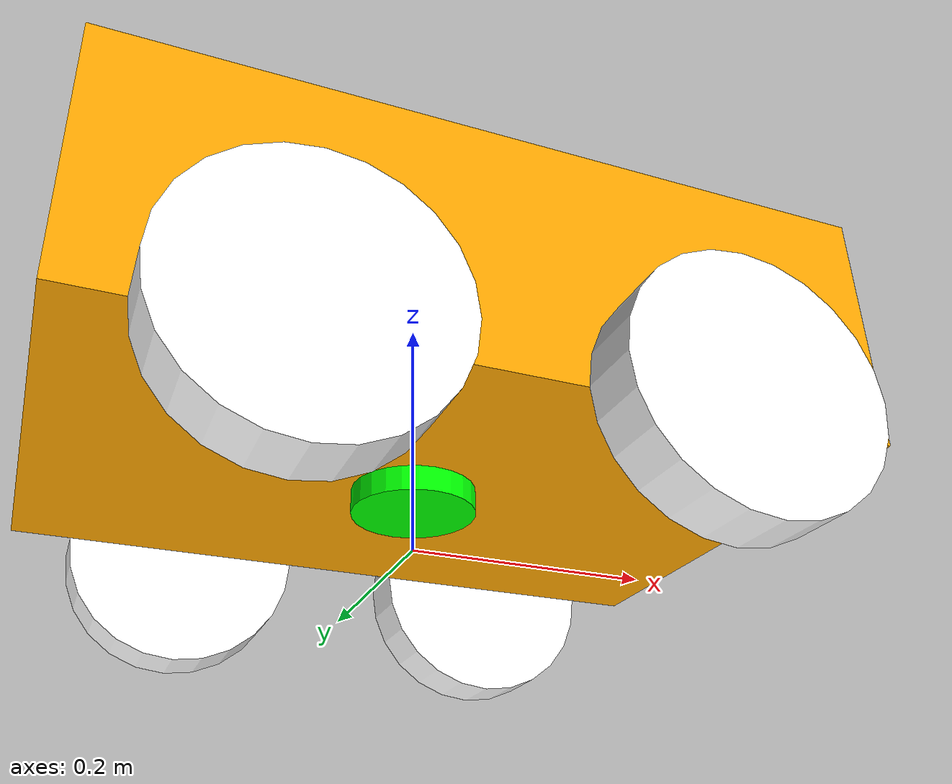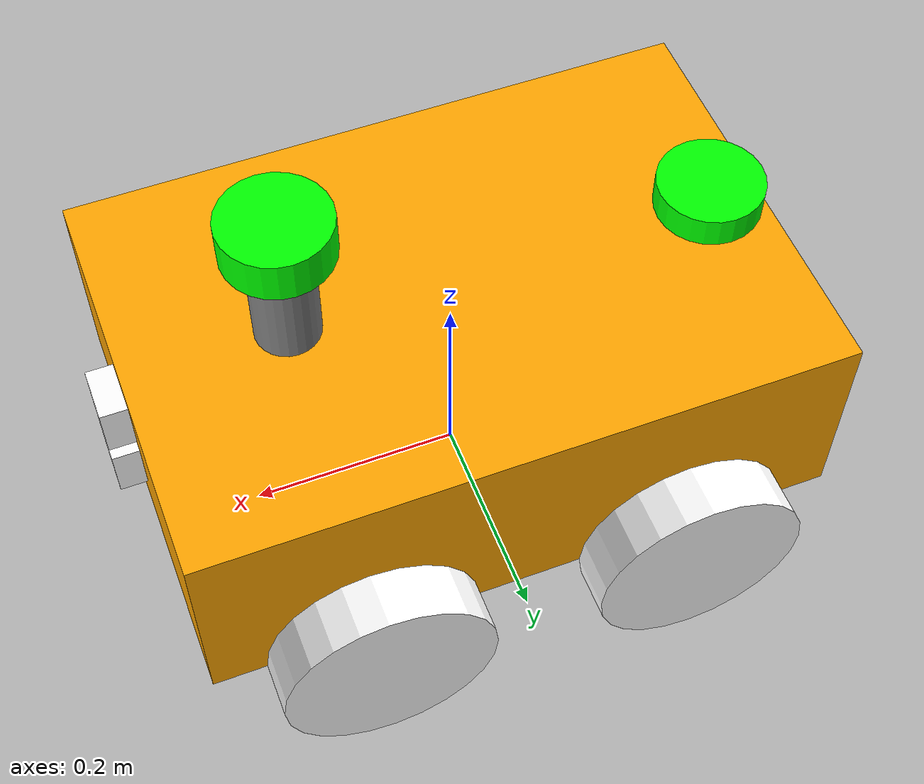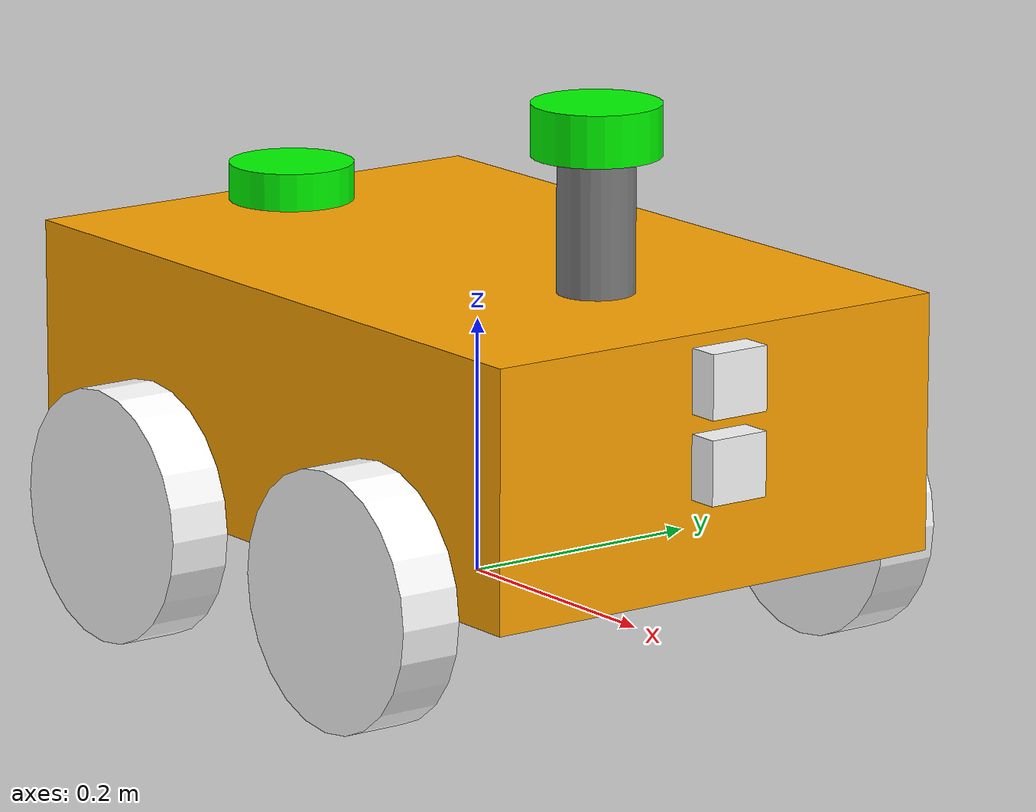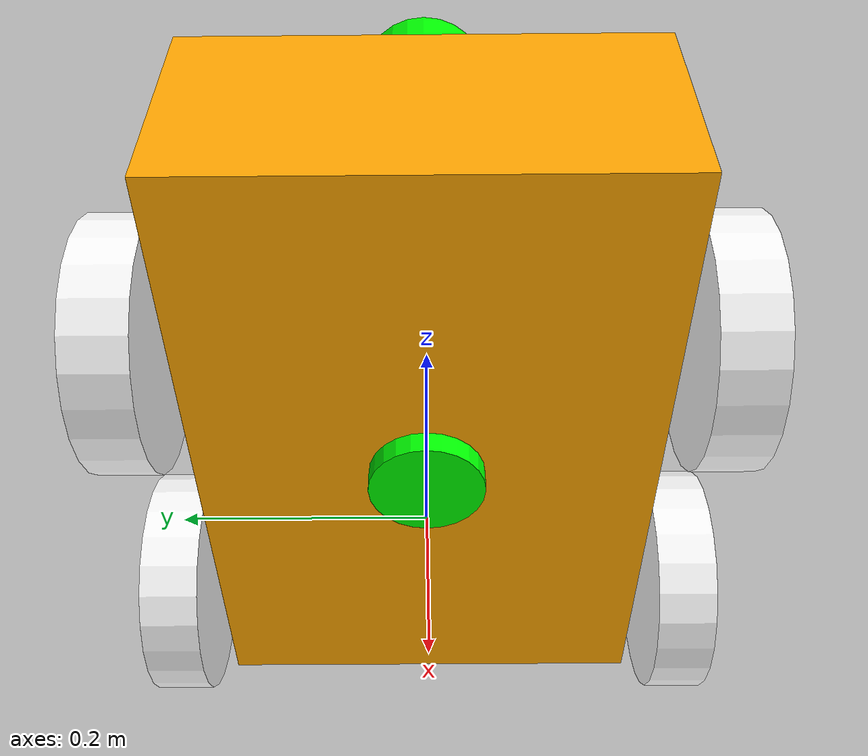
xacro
<?xml version = "1.0"?>
<robot xmlns:xacro="http://www.ros.org/wiki.xacro" name = "robot" >

<xacro:include filename="inertial.xacro"/>
<xacro:include filename="lidar.xacro"/>
<xacro:include filename="stereo.xacro"/>
<xacro:include filename="gps.xacro"/>
<xacro:include filename="imu.xacro"/>
<xacro:include filename="cam.xacro"/>

<xacro:property name="wheel_radius" value="0.1"/>
<xacro:property name="wheel_length" value="0.05"/>
<xacro:property name="wheel_mass" value="0.5"/>
<xacro:property name="damping" value="0.1"/>
<xacro:property name="friction" value="0.5"/>

    <material name = "grey">
        <color rgba = "0.7 0.7 0.7 1" />
    </material>

    <material name = "green">
        <color rgba = "0 0.6 0 1" />
    </material>

    <material name = "white">
        <color rgba = "1 1 1 1" />
    </material>

    <material name = "black">
        <color rgba = "0 0 0 1" />
    </material>

    <material name = "yellow">
        <color rgba = "0.7 0.9 0 1" />
    </material>

    <material name="orange">
    <color rgba="1 0.65 0 1" />
    </material>

    <link name="base_footprint">
        <inertial>
            <mass value="0.0"/>
            <origin xyz="0 0 0" rpy="0 0 0"/>
            <inertia ixx="0" ixy="0" ixz="0" iyy="0" iyz="0" izz="0"/>

        </inertial>
    </link>

    <joint name="base_joint" type="fixed">
        <parent link="base_footprint"/>
        <child link="base_link"/>
        <origin xyz = "0 0 0.05" rpy = "0 0 0" />

    </joint>

    <link name = "base_link">
        <visual>
            <geometry>
                <box size = "0.6 0.4 0.2" />
            </geometry>
            <origin xyz = "0 0 0.1" rpy = "0 0 0" />
            <material name = "orange" />
        </visual>

        <collision>
            <geometry>
                <box size = "0.6 0.4 0.2" />
            </geometry>
            <origin xyz = "0 0 0.1" rpy = "0 0 0" />
        </collision>

        <xacro:inertial_box mass="10" x="0.6" y="0.4" z="0.2">
            <origin xyz="0 0 0.1" rpy="0 0 0"/>
        </xacro:inertial_box>
    </link>

    <gazebo reference="base_link">
        <material>Gazebo/Orange</material>
    </gazebo>

    <link name="left_wheel_back_link">
        <visual>
            <geometry>
                <cylinder radius="0.1" length="0.05" />
            </geometry>

            <origin xyz="0 0 0" rpy="1.57 0 0"/>
            <material name = "white" />
        </visual>

        <collision>
            <geometry>
                <cylinder radius="0.1" length="0.05" />
            </geometry>

            <origin xyz="0 0 0" rpy="1.57 0 0"/>
        </collision>

        <xacro:inertial_cylinder mass="10" length="0.05" radius="0.1">
            <origin xyz="0 0 0" rpy="1.57 0 0"/>
        </xacro:inertial_cylinder>
    </link>

    <gazebo reference="left_wheel_back_link">
        <material>Gazebo/White</material>
    </gazebo>

    <joint name="base_left_wheel_back_joint" type="continuous">
        <parent link="base_link" />
        <child link="left_wheel_back_link" />
        <origin xyz="-0.15 0.225 0" rpy="0 0 0"/>
        <axis xyz="0 1 0" />
        <dynamics damping="0.1" friction="0.5"/>
    </joint>

    <link name="right_wheel_back_link">
        <visual>
            <geometry>
                <cylinder radius="0.1" length="0.05" />
            </geometry>

            <origin xyz="0 0 0" rpy="-1.57 0 0"/>
            <material name = "white" />
        </visual>

        <collision>
            <geometry>
                <cylinder radius="0.1" length="0.05" />
            </geometry>

            <origin xyz="0 0 0" rpy="-1.57 0 0"/>
        </collision>

        <xacro:inertial_cylinder mass="10" length="0.05" radius="0.1">
            <origin xyz="0 0 0" rpy="-1.57 0 0"/>
        </xacro:inertial_cylinder>
    </link>

    <gazebo reference="right_wheel_back_link">
        <material>Gazebo/White</material>
    </gazebo>

    <joint name="base_right_wheel_back_joint" type="continuous">
        <parent link="base_link" />
        <child link="right_wheel_back_link" />
        <origin xyz="-0.15 -0.225 0" rpy="0 0 0"/>
        <axis xyz="0 1 0" />
        <dynamics damping="0.1" friction="0.5"/>
    </joint>

     <link name="left_wheel_front_link">
        <visual>
            <geometry>
                <cylinder radius="0.1" length="0.05" />
            </geometry>

            <origin xyz="0 0 0" rpy="1.57 0 0"/>
            <material name = "white" />
        </visual>

        <collision>
            <geometry>
                <cylinder radius="0.1" length="0.05" />
            </geometry>

            <origin xyz="0 0 0" rpy="1.57 0 0"/>
        </collision>

        <xacro:inertial_cylinder mass="10" length="0.05" radius="0.1">
            <origin xyz="0 0 0" rpy="1.57 0 0"/>
        </xacro:inertial_cylinder>
    </link>

    <gazebo reference="left_wheel_front_link">
        <material>Gazebo/White</material>
    </gazebo>

    <joint name="base_left_wheel_front_joint" type="continuous">
        <parent link="base_link" />
        <child link="left_wheel_front_link" />
        <origin xyz="0.15 0.225 0" rpy="0 0 0"/>
        <axis xyz="0 1 0" />
        <dynamics damping="0.1" friction="0.5"/>
    </joint>

    <link name="right_wheel_front_link">
        <visual>
            <geometry>
                <cylinder radius="0.1" length="0.05" />
            </geometry>

            <origin xyz="0 0 0" rpy="-1.57 0 0"/>
            <material name = "white" />
        </visual>

        <collision>
            <geometry>
                <cylinder radius="0.1" length="0.05" />
            </geometry>

            <origin xyz="0 0 0" rpy="-1.57 0 0"/>
        </collision>

        <xacro:inertial_cylinder mass="10" length="0.05" radius="0.1">
            <origin xyz="0 0 0" rpy="-1.57 0 0"/>
        </xacro:inertial_cylinder>
    </link>

    <gazebo reference="left_wheel_front_link">
        <material>Gazebo/White</material>
    </gazebo>

    <joint name="base_right_wheel_front_joint" type="continuous">
        <parent link="base_link" />
        <child link="right_wheel_front_link" />
        <origin xyz="0.15 -0.225 0" rpy="0 0 0"/>
        <axis xyz="0 1 0" />
        <dynamics damping="0.1" friction="0.5"/>
    </joint>

     <gazebo>
        <plugin name='diff_drive' filename='libgazebo_ros_diff_drive.so'>
            <num_wheel_pairs>2</num_wheel_pairs>

            <!-- wheels -->
            <left_joint>base_left_wheel_front_joint</left_joint>

            <right_joint>base_right_wheel_front_joint</right_joint>

           <left_joint>base_left_wheel_back_joint</left_joint>

            <right_joint>base_right_wheel_back_joint</right_joint>

            <!-- kinematics -->
            <wheel_separation>0.45</wheel_separation>
            <wheel_diameter>0.2</wheel_diameter>

            <!-- limits -->
            <max_wheel_torque>10</max_wheel_torque>
            <max_wheel_acceleration>1.0</max_wheel_acceleration>

            <!-- output -->
            <publish_odom>true</publish_odom>
            <publish_odom_tf>true</publish_odom_tf>
            <publish_wheel_tf>false</publish_wheel_tf>

            <odometry_frame>odom</odometry_frame>
            <robot_base_frame>base_footprint</robot_base_frame>
        </plugin>
    </gazebo>

    <gazebo>
        <plugin name="gazebo_ros_joint_state_publisher" filename="libgazebo_ros_joint_state_publisher.so">
            <update_rate>10</update_rate>
            <joint_name>base_left_wheel_front_joint</joint_name>
            <joint_name>base_left_wheel_back_joint</joint_name>
            <joint_name>base_right_wheel_front_joint</joint_name>
            <joint_name>base_right_wheel_back_joint</joint_name>

        </plugin>
    </gazebo>

</robot>

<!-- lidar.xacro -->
<robot xmlns:xacro="http://www.ros.org/wiki/xacro" name="robot">

  <!-- Joint connecting the base_link to the lidar_stand (elevated) -->
  <joint name="stand_joint" type="fixed">
    <parent link="base_link"/>
    <child link="lidar_stand"/>
    <origin xyz="0.15 0 0.25" rpy="0 0 0"/> <!-- Elevated by 0.3 meters -->
  </joint>

  <!-- Lidar stand link -->
  <link name="lidar_stand">
    <visual>
      <geometry>
        <cylinder radius="0.03" length="0.15"/>
      </geometry>
      <material name="gray">
        <color rgba="0.5 0.5 0.5 1"/>
      </material>
    </visual>
    <collision>
      <geometry>
        <cylinder radius="0.03" length="0.15"/>
      </geometry>
    </collision>
    <xacro:inertial_cylinder mass="0.2" length="0.15" radius="0.03">
      <origin xyz="0 0 0" rpy="0 0 0"/>
    </xacro:inertial_cylinder>
  </link>

  <!-- Joint connecting the lidar_stand to the laser_frame -->
  <joint name="laser_joint" type="fixed">
    <parent link="lidar_stand"/>
    <child link="laser_frame"/>
    <origin xyz="0 0 0.075" rpy="0 0 0"/>
  </joint>

  <!-- Laser frame link -->
  <link name="laser_frame">
    <visual>
      <geometry>
        <cylinder radius="0.05" length="0.04"/>
      </geometry>
      <material name="green">
        <color rgba="0 1 0 1"/>
      </material>
    </visual>
    <collision>
      <geometry>
        <cylinder radius="0.05" length="0.04"/>
      </geometry>
    </collision>
    <xacro:inertial_cylinder mass="0.1" length="0.04" radius="0.05">
      <origin xyz="0 0 0" rpy="0 0 0"/>
    </xacro:inertial_cylinder>
  </link>

  <!-- Gazebo-specific plugin for the laser sensor -->
  <gazebo reference="laser_frame">
    <sensor name="lidar" type="ray">
      <pose>0.215 0 0.215 0 0 0</pose>
      <always_on>true</always_on>
      <visualize>true</visualize>
      <update_rate>5</update_rate>
      <ray>
        <scan>
          <horizontal>
            <samples>360</samples>
            <resolution>1.00000</resolution>
            <min_angle>0.000000</min_angle>
            <max_angle>6.280000</max_angle>
          </horizontal>
        </scan>
        <range>
          <min>0.120000</min>
          <max>3.5</max>
          <resolution>0.015000</resolution>
        </range>
        <noise>
          <type>gaussian</type>
          <mean>0.0</mean>
          <stddev>0.01</stddev>
        </noise>
      </ray>
      <plugin name="scan" filename="libgazebo_ros_ray_sensor.so">
        <ros>
          <remapping>~/out:=scan</remapping>
        </ros>
        <output_type>sensor_msgs/LaserScan</output_type>
        <frame_name>laser_frame</frame_name>
      </plugin>
    </sensor>
  </gazebo>

</robot>

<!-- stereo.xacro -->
<robot xmlns:xacro="http://www.ros.org/wiki/xacro">

  <joint name="stereo" type="fixed">
    <parent link="base_link"/>
    <child link="stereo_link"/>
    <origin xyz="0.3 0 0.165" rpy="0 0 0"/>
  </joint>

  <link name="stereo_link">
    <visual>
      <geometry>
        <box size="0.05 0.05 0.05"/>
      </geometry>
      <material name="white"/>
    </visual>

    <xacro:inertial_box mass="0.02" x="0.05" y="0.05" z="0.05">
      <origin xyz="0.3 0 0.165" rpy="0 0 0"/>
    </xacro:inertial_box>
  </link>

  <!-- Optical frame added here -->
  <joint name="stereo_optical_joint" type="fixed">
    <parent link="stereo_link"/>
    <child link="stereo_link_optical"/>
    <origin xyz="0 0 0" rpy="-1.5708 0 -1.5708"/>
  </joint>

  <link name="stereo_link_optical"/>

  <gazebo reference="stereo_link">
    <sensor name="camera" type="depth">
      <always_on>true</always_on>
      <update_rate>60</update_rate>
      <visualize>true</visualize>
      <pose>0 0 0 0.0 0.0 0.0</pose>
      <camera name="realsense_depth_camera">
        <horizontal_fov>1.3962634</horizontal_fov> <!-- Approx. 80 degrees -->
        <image>
          <width>640</width>
          <height>480</height>
          <format>R8G8B8</format>
        </image>
        <clip>
          <near>0.01</near>
          <far>20.0</far>
        </clip>
        <depth_noise>
          <mean>0.0</mean>
          <stddev>0.005</stddev>
        </depth_noise>
      </camera>
      <plugin name="intel_realsense_d430_depth_driver" filename="libgazebo_ros_camera.so">
        <ros>
          <namespace>d430</namespace>
          <remapping>camera/image_raw:=color/image_raw</remapping>
          <remapping>camera/depth/image_raw:=depth/image_rect_raw</remapping>
          <remapping>camera/camera_info:=camera_info</remapping>
          <remapping>camera/depth/camera_info:=depth/camera_info</remapping>
          <remapping>camera/points:=depth/points</remapping>
        </ros>
        <camera_name>camera</camera_name>
        <frame_name>stereo_link_optical</frame_name>
        <hack_baseline>0.07</hack_baseline>
        <min_depth>0.01</min_depth>
        <max_depth>20.0</max_depth>
      </plugin>
    </sensor>
  </gazebo>

</robot>

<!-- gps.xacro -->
<robot xmlns:xacro="http://www.ros.org/wiki/xacro" name="robot">

  <joint name="gps_joint" type="fixed">
    <parent link="base_link"/>
    <child link="gps_link"/>
    <origin xyz="-0.25 0 0.210" rpy="0 0 0"/>
  </joint>

  <link name="gps_link">
    <visual>
      <geometry>
        <cylinder radius="0.05" length="0.04"/>
      </geometry>
      <material name="black">
        <color rgba="0 1 0 1"/>
      </material>
    </visual>
    <collision>
      <geometry>
        <cylinder radius="0.05" length="0.04"/>
      </geometry>
    </collision>

    <xacro:inertial_cylinder mass="0.1" length="0.04" radius="0.05">
      <origin xyz="0 0 0" rpy="0 0 0"/>
    </xacro:inertial_cylinder>
  </link>

  <gazebo reference="gps_link">
    <sensor name="gps_sensor" type="gps">
        <always_on>true</always_on>
        <update_rate>1.0</update_rate>
        <plugin name="gps_controller" filename="libgazebo_ros_gps_sensor.so">
            <ros>
                <remapping>gps_controller/out:=gps</remapping>
            </ros>
            <frame_name>gps_link</frame_name>
        </plugin>
    </sensor>
    <material>Gazebo/Grey</material>
  </gazebo>

  </robot>

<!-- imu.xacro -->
<robot xmlns:xacro="http://www.ros.org/wiki/xacro">

  <!-- Joint connecting the base_link to the imu_link -->
  <joint name="imu_joint" type="fixed">
    <parent link="base_link"/>
    <child link="imu_link"/>
    <origin xyz="0 0 0" rpy="0 0 0"/>
  </joint>

  <!-- IMU Link -->
  <link name="imu_link">
    <visual>
      <geometry>
        <cylinder radius="0.05" length="0.04"/>
      </geometry>
      <material name="black">
        <color rgba="0 1 0 1"/>
      </material>
    </visual>
    <collision>
      <geometry>
        <cylinder radius="0.05" length="0.04"/>
      </geometry>
    </collision>
    <!-- Custom xacro inertial block -->
    <xacro:inertial_cylinder mass="0.1" length="0.04" radius="0.05">
      <origin xyz="0 0 0" rpy="0 0 0"/>
    </xacro:inertial_cylinder>
  </link>

  <!-- Gazebo-specific plugin for the IMU sensor -->
  <gazebo reference="imu_link">
    <sensor name="imu_sensor" type="imu">
      <always_on>true</always_on>
      <update_rate>100.0</update_rate>
      <plugin name="imu_controller" filename="libgazebo_ros_imu_sensor.so">
        <ros>
          <remapping>imu_controller/out:=imu</remapping>
        </ros>
        <frame_name>imu_link</frame_name>
      </plugin>
    </sensor>
    <material>Gazebo/Grey</material>
  </gazebo>

</robot>

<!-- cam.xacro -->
<robot xmlns:xacro="http://www.ros.org/wiki/xacro" >

    <joint name="camera_joint" type="fixed">
        <parent link="base_link"/>
        <child link="camera_link"/>
        <origin xyz="0.3 0 0.1" rpy="0 0 0"/>
    </joint>

    <link name="camera_link">
        <visual>
            <geometry>
            <box size="0.05 0.05 0.05"/>
            </geometry>
            <material name="white"/>
        </visual>

         <gazebo reference="camera_link">
        <sensor type="camera" name="my_camera">
            <update_rate>20</update_rate>
            <visualize>true</visualize>
            <camera name="cam">
                <horizontal_fov>1.3962634</horizontal_fov>
                <image>
                    <width>640</width>
                    <height>480</height>
                    <format>R8B8G8</format>
                </image>
                <clip>
                    <near>0.02</near>
                    <far>1000</far>
                </clip>
                <noise>
                    <type>gaussian</type>
                    <mean>0.0</mean>
                    <stddev>0.007</stddev>
                </noise>
            </camera>
            <plugin name="camera_controller" filename="libgazebo_ros_camera.so">
                <frame_name>camera_link</frame_name>
                <min_depth>0.1</min_depth>
                <max_depth>1000</max_depth>
            </plugin>
        </sensor>
    </gazebo>

        <xacro:inertial_box mass="0.02" x="0.05" y="0.05" z="0.05">
            <origin xyz="0.3 0 0.1" rpy="0 0 0"/>
        </xacro:inertial_box>
    </link>
</robot>
